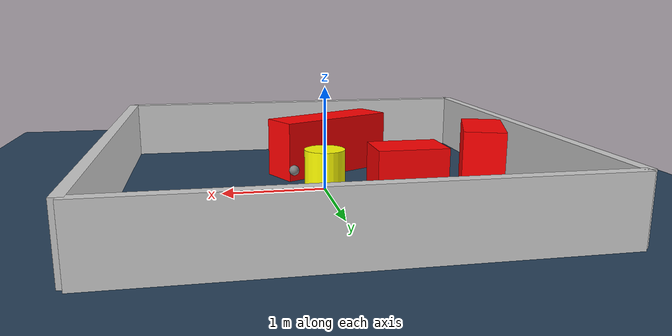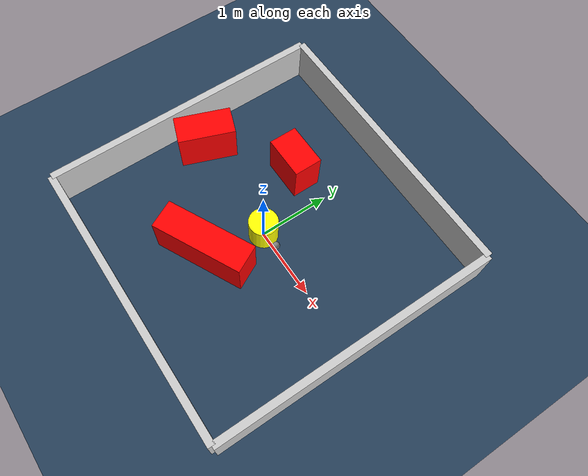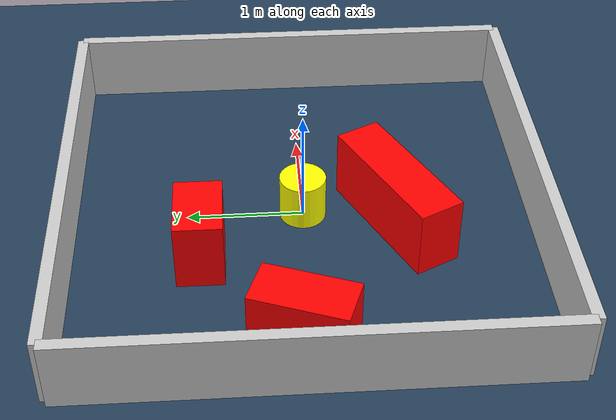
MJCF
<?xml version="1.0" ?>
<mujoco model="generated_environment">
  <option timestep="0.01" integrator="RK4" cone="elliptic"/>
  <default>
    <geom density="1"/>
  </default>
  <asset>
    <texture builtin="gradient" height="3072" rgb1="0.3 0.5 0.7" rgb2="0 0 0" type="skybox" width="512"/>
    <texture builtin="checker" height="300" mark="edge" markrgb="0.8 0.8 0.8" name="groundplane" rgb1="0.2 0.3 0.4" rgb2="0.1 0.2 0.3" type="2d" width="300"/>
    <material name="groundplane" reflectance="0.2" texrepeat="5 5" texture="groundplane" texuniform="true"/>
    <material name="robot" rgba="0.0 1.0 0.0 1"/>
  </asset>
  <worldbody>
    <light dir="0 0 -1" directional="true" pos="0 0 1.5"/>
    <geom condim="4" friction="1.0 0.005 0.001" material="groundplane" name="floor" size="0 0 0.05" type="plane"/>
    <body name="walls">
      <geom name="wall_1" condim="4" pos="-2.0 0.0 0.3" rgba="0.800000011920929 0.800000011920929 0.800000011920929 1.0" size="0.05 2.0 0.3" type="box"/>
      <geom name="wall_2" condim="4" pos="2.0 0.0 0.3" rgba="0.800000011920929 0.800000011920929 0.800000011920929 1.0" size="0.05 2.0 0.3" type="box"/>
      <geom name="wall_3" condim="4" pos="0.0 -2.0 0.3" rgba="0.800000011920929 0.800000011920929 0.800000011920929 1.0" size="2.0 0.05 0.3" type="box"/>
      <geom name="wall_4" condim="4" pos="0.0 2.0 0.3" rgba="0.800000011920929 0.800000011920929 0.800000011920929 1.0" size="2.0 0.05 0.3" type="box"/>
    </body>
    <body name="robot">
      <joint name="joint_x" type="slide" pos="0 0 0" axis="1 0 0"/>
      <joint name="joint_y" type="slide" pos="0 0 0" axis="0 1 0"/>
      <geom name="robot" type="sphere" pos="0.3 0.0 0.2" size="0.05" mass="5." friction="1.0 0.005 0.0001" condim="4" rgba="0.5 0.5 0.5 1.0"/>
      <site name="sensor_ball"/>
    </body>
    <body name="obstacle_movable_1">
      <geom name="obstacle_movable_1" condim="4" pos="0.0 0.0 0.2" euler="0 0 0.0" friction="1.0 0.005 0.001" rgba="1.0 1.0 0.0 1.0" size="0.2 0.2 0.0" type="cylinder" mass="0.1"/>
      <joint type="free"/>
    </body>
    <body name="obstacle_2_static">
      <geom name="obstacle_2_static" condim="4" pos="-0.5542630806221887 0.8807976189383739 0.3" euler="0 0 0.006462282061590052" friction="1.0 0.005 0.001" rgba="1 0 0 1" size="0.3032770580055422 0.2 0.3" type="box"/>
    </body>
    <body name="obstacle_3_static">
      <geom name="obstacle_3_static" condim="4" pos="-1.5829927981787124 0.08398507320135917 0.3" euler="0 0 69.60674222255311" friction="1.0 0.005 0.001" rgba="1 0 0 1" size="0.3971517534465458 0.2 0.3" type="box"/>
    </body>
    <body name="obstacle_4_static">
      <geom name="obstacle_4_static" condim="4" pos="-0.1742735798529187 -0.7868674155867659 0.3" euler="0 0 26.735005763796288" friction="1.0 0.005 0.001" rgba="1 0 0 1" size="0.6380813974747983 0.2 0.3" type="box"/>
    </body>
  </worldbody>
  <actuator>
    <motor name="actuator_x" joint="joint_x" gear="1" ctrlrange="-1 1"/>
    <motor name="actuator_y" joint="joint_y" gear="1" ctrlrange="-1 1"/>
  </actuator>
</mujoco>
